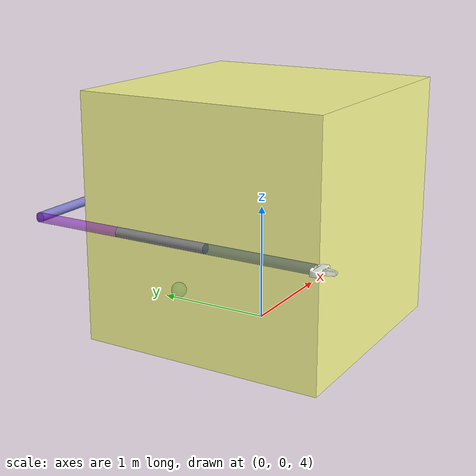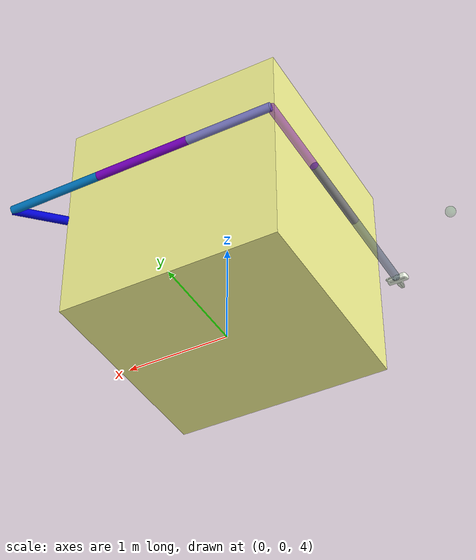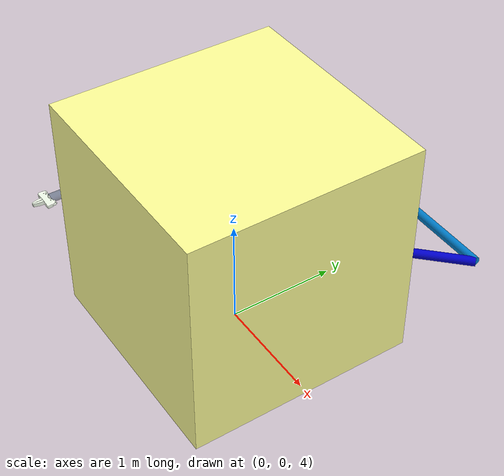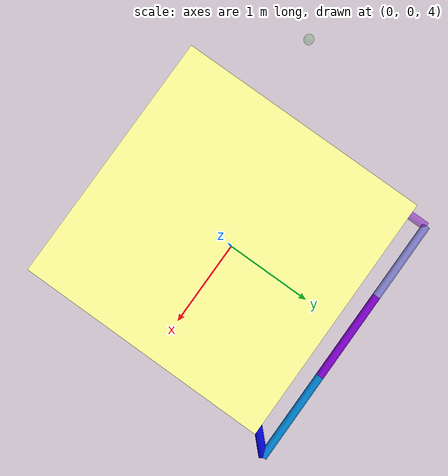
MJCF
<?xml version="1.0" ?>
<mujoco model="free_floating_spacecraft_manipulator">
    <compiler angle="radian" />
    <option timestep="0.2" iterations="30">
        <flag gravity="disable" />
    </option>
    <asset>
		<texture type="skybox" builtin="none" file="space.png" rgb1="1 1 1" rgb2=".6 .8 1" />
        <texture name="texplane" type="2d" builtin="checker" rgb1=".2 .3 .4" rgb2=".1 0.15 0.2" width="512" height="512"/>
        <material name="MatGnd" reflectance="0.5" texture="texplane" texrepeat="1 1" texuniform="true"/>

        <mesh name="hand_col" file="meshes/collision/hand.stl"/>
        <mesh name="finger_col" file="meshes/collision/finger.stl" scale='1.75 1.0 1.75'/>
        <mesh name="hand_viz" file="meshes/visual/hand.stl"/>
        <mesh name="finger_viz" file="meshes/collision/finger.stl" scale='1.75 1.0 1.75'/>
    </asset>
    <size njmax="1000" nconmax="100" />

    <default>
        <default class="panda">
            <joint pos="0 0 0" axis="0 0 1" limited="true"/>
            <position forcelimited="true" ctrllimited="true" user="1002 40 2001 -0.005 0.005"/>
            <default class="spaceRobot_viz">
                <geom contype="0" conaffinity="0" group="0" type="mesh" rgba=".95 .99 .92 1" mass="0"/>
            </default>

            <default class="spaceRobot_col">
                <geom contype="1" conaffinity="1" group="3" type="mesh" rgba=".5 .6 .7 1"/>
            </default>

             <default class="spaceRobot_finger">
                <joint damping="100" armature='5'/>
                <geom friction="1 0.5 0.0001" solref="0.01 1" solimp="0.8 0.9 0.001" margin="0.001" user="0" rgba="0.5 0.6 0.7 .4" contype="1" conaffinity="0" condim="6" group="3" />
                <position user="1002 40 2001 -0.0001 0.0001"/>
            </default>
        </default>

    </default>

    <worldbody>
        <light directional="false" diffuse=".8 .8 .8" specular="0.3 0.3 0.3" pos="1  1 3" dir="-1 -1 -3"/>
        <light directional="false" diffuse=".8 .8 .8" specular="0.3 0.3 0.3" pos="1 -1 3" dir="-1 1 -3"/>
        <light directional="false" diffuse=".8 .8 .8" specular="0.3 0.3 0.3" pos="-1 0 3" dir="1 0 -3" />
        <site name="debrisSite" pos="-2. -0.5 5." rgba="0.2 0.6 0.2 0.25" size=".05" type="sphere" />  <!-- solved -->

        <body name="spacecraft_base" pos="0 0 5" >
            <site name="baseSite" pos="0 0 0" type="sphere" size="0.01" rgba="0.1 0.2 0.3 1" />
            <inertial mass="500" pos="0 0 0" diaginertia="1400 1400 1040"/>
            <joint name="BasefloatingJoint" type="free" damping="0"/>
            <geom size="1.05 1.05 1.05" type="box" rgba="1 1 0.6 1" />
            <body name="spacecraft_link1" pos="1.2268 1.2268 0" quat="0.653281 -0.653281 0.270598 -0.270598">
                <inertial pos="0 0 0" mass="20" diaginertia="0.1 0.1 0.1" />
                <joint damping="200" name="sjoint1" pos="0 0 0" axis="0 0 1" limited="true" range="-3.14159 3.14159" />
                <geom size="0.04 0.25" type="cylinder" rgba="0 0 0.8 1" />
                <body name="spacecraft_link2" pos="-0.3182 0 -0.0682" euler="0 -2.355 0">
                    <inertial pos="0 0 0" quat="0.5 0.5 0.5 0.5" mass="30" diaginertia="25 25 0.25" />
                    <joint damping="200" name="sjoint2" pos="0 0 -0.45" axis="0 1 0" limited="true" range="-3.14159 3.14159" />
                    <geom size="0.04 0.45" type="cylinder" rgba="0 0.5 0.8 1" />
                    <body name="spacecraft_link3" pos="0 0 0.90" euler="0 0 0">
                        <inertial pos="0 0 0" quat="0.5 0.5 0.5 0.5" mass="30" diaginertia="25 25 0.25" />
                        <joint damping="200" name="sjoint3" pos="0 0 -0.45" axis="1 0 0" limited="true" range="-3.14159 3.14159" />
                        <geom size="0.04 0.45" type="cylinder" rgba="0.5 0 0.8 1" />
                        <body name="spacecraft_link4" pos="0 0 0.85" euler="0 0 0">
                            <inertial pos="0 0 0" quat="0.5 0.5 0.5 0.5" mass="20" diaginertia="25 25 0.25" />
                            <joint damping="200" name="sjoint4" pos="0 0 -0.4" axis="0 1 0" limited="true" range="-3.14159 3.14159" />
                            <geom size="0.04 0.4" type="cylinder" rgba="0.5 0.5 0.8 1" />
                            <body name="spacecraft_link5" pos="-0.4 0 0.4" euler="0 -1.57 0">
                                <inertial pos="0 0 0" quat="0.5 0.5 0.5 0.5" mass="20" diaginertia="25 25 0.25" />
                                <joint damping="200" name="sjoint5" pos="0 0 -0.4" axis="1 0 0" limited="true" range="-3.14159 3.14159"/>
                                <geom size="0.04 0.4" type="cylinder" rgba="0.5 0 0.8 0.5" />
                                <body name="spacecraft_link6" pos="0 0 0.8" euler="0 0 0">
                                    <inertial pos="0 0 0" quat="0.5 0.5 0.5 0.5" mass="20" diaginertia="25 25 0.25" />
                                    <joint damping="200" name="sjoint6" pos="0 0 -0.4" axis="0 1 0" limited="true" range="-3.14159 3.14159" />
                                    <geom size="0.04 0.4" type="cylinder" rgba="0.5 0.5 0.5 1" />
                                    <body name="spacecraft_link7" pos="0 0 0.85" euler="0 0 0">
                                        <inertial pos="0 0 0" quat="0.5 0.5 0.5 0.5" mass="20" diaginertia="25 25re 0.25" />
                                        <joint damping="200" name="sjoint7" pos="0 0 0" axis="0 0 1" limited="true" range="-3.14159 3.14159" />
                                        <geom size="0.04 0.45" type="cylinder" rgba="0.2 0.3 0.4 0.5" />
                                        <geom pos="0 0 0.45" euler='0 0 -1.57' class="spaceRobot_viz" mesh="hand_viz"/>
                                        <geom pos="0 0 0.45" euler='0 0 -1.57' class="spaceRobot_col" mesh="hand_col" mass="0.81909"/>
                                        <site name='end_effector' pos='0 0 0.56' size='0.01' euler='0 0 -0.785398'/>

                                        <body name="leftfinger" pos="0 0 0.5154" euler='0 0 -1.57' childclass='spaceRobot_finger'>
                                            <inertial pos="-1.57863e-05 0.0118731 0.0434103" quat="0.705868 0.0310348 -0.0314925 0.706962" mass="0.0927059" diaginertia="6.57134e-05 6.09611e-05 1.09932e-05" />

                                            <geom class="spaceRobot_viz" mesh="finger_viz"/>
                                            <geom size="0.0070" fromto=".009 .006 .0875   -.009 .009 .0875" type="capsule" />
                                            <geom size="0.0070" fromto=".009 .009 .0875   -.009 .006 .0875" type="capsule" />

                                            <geom size="0.0075" fromto=".009 .007 .0775   -.009 .010 .0775" type="capsule" />
                                            <geom size="0.0075" fromto=".009 .010 .0775   -.009 .007 .0775" type="capsule" />

                                            <geom size="0.0082" fromto=".009 .008 .0675   -.009 .011 .0675" type="capsule" />
                                            <geom size="0.0082" fromto=".009 .011 .0675   -.009 .008 .0675" type="capsule" />

                                            <geom size="0.0090" fromto=".009 .009 .0575   -.009 .012 .0575" type="capsule" />
                                            <geom size="0.0090" fromto=".009 .012 .0575   -.009 .009 .0575" type="capsule" />

                                            <geom size="0.0100" fromto=".009 .0105 .0475   -.009 .0135 .0475" type="capsule" />
                                            <geom size="0.0100" fromto=".009 .0135 .0475   -.009 .0105 .0475" type="capsule" />

                                            <geom size="0.0110" fromto=".009 .012 .035   -.009 .015 .035" type="capsule" />
                                            <geom size="0.0110" fromto=".009 .015 .035   -.009 .012 .035" type="capsule" />

                                            <geom size="0.0185 0.0120 0.0175" pos="0 0.014 0.015" type="box" euler='.03 0 0' />
                                        </body>

                                        <body name="rightfinger" pos="0 0 0.5154" euler='0 0 -1.57'  childclass='spaceRobot_finger'>
                                            <inertial pos="1.57863e-05 -0.0118731 0.0434103" quat="0.705868 -0.0310348 0.0314925 0.706962" mass="0.0927059" diaginertia="6.57134e-05 6.09611e-05 1.09932e-05" />
                                            <geom quat="0 0 0 1" class="spaceRobot_viz" mesh="finger_viz"/>
                                            <geom size="0.0070" fromto=".009 -.006 .0875   -.009 -.009 .0875" type="capsule" />
                                            <geom size="0.0070" fromto=".009 -.009 .0875   -.009 -.006 .0875" type="capsule" />

                                            <geom size="0.0075" fromto=".009 -.007 .0775   -.009 -.010 .0775" type="capsule" />
                                            <geom size="0.0075" fromto=".009 -.010 .0775   -.009 -.007 .0775" type="capsule" />

                                            <geom size="0.0082" fromto=".009 -.008 .0675   -.009 -.011 .0675" type="capsule" />
                                            <geom size="0.0082" fromto=".009 -.011 .0675   -.009 -.008 .0675" type="capsule" />

                                            <geom size="0.0090" fromto=".009 -.009 .0575   -.009 -.012 .0575" type="capsule" />
                                            <geom size="0.0090" fromto=".009 -.012 .0575   -.009 -.009 .0575" type="capsule" />

                                            <geom size="0.0100" fromto=".009 -.0105 .0475   -.009 -.0135 .0475" type="capsule" />
                                            <geom size="0.0100" fromto=".009 -.0135 .0475   -.009 -.0105 .0475" type="capsule" />

                                            <geom size="0.0110" fromto=".009 -.012 .035   -.009 -.015 .035" type="capsule" />
                                            <geom size="0.0110" fromto=".009 -.015 .035   -.009 -.012 .035" type="capsule" />

                                            <geom size="0.0185 0.0120 0.0175" pos="0 -.014 0.015" type="box" euler='-.03 0 0' />
                                        </body>
                                    </body>
                                </body>
                            </body>
                        </body>
                    </body>
                </body>
            </body>
        </body>
    </worldbody>

    <actuator>
        <motor name="motor1" joint="sjoint1" ctrlrange="-3 3" ctrllimited="true" />  <!-- gear='32' -->
        <motor name="motor2" joint="sjoint2" ctrlrange="-3 3" ctrllimited="true" />  <!-- gear='32' -->
        <motor name="motor3" joint="sjoint3" ctrlrange="-3 3" ctrllimited="true" />  <!-- gear='32' -->
        <motor name="motor4" joint="sjoint4" ctrlrange="-3 3" ctrllimited="true" />  <!-- gear='32' -->
        <motor name="motor5" joint="sjoint5" ctrlrange="-3 3" ctrllimited="true" />  <!-- gear='32' -->
        <motor name="motor6" joint="sjoint6" ctrlrange="-3 3" ctrllimited="true" />  <!-- gear='32' -->
        <motor name="motor7" joint="sjoint7" ctrlrange="-3 3" ctrllimited="true" />  <!-- gear='32' -->
    </actuator>

    <sensor>
        <gyro name="baseGyro" site="baseSite" noise="0.001" />
        <accelerometer name="baseAccel" site="baseSite" noise="0.001" />
        <jointpos name="encoderPos1" joint="sjoint1" noise="0.001" />
        <jointpos name="encoderPos2" joint="sjoint2" noise="0.001" />
        <jointpos name="encoderPos3" joint="sjoint3" noise="0.001" />
        <jointpos name="encoderPos4" joint="sjoint4" noise="0.001" />
        <jointpos name="encoderPos5" joint="sjoint5" noise="0.001" />
        <jointpos name="encoderPos6" joint="sjoint6" noise="0.001" />
        <jointpos name="encoderPos7" joint="sjoint7" noise="0.001" />

        <jointvel name="encoderVel1" joint="sjoint1" noise="0.001" />
        <jointvel name="encoderVel2" joint="sjoint2" noise="0.001" />
        <jointvel name="encoderVel3" joint="sjoint3" noise="0.001" />
        <jointvel name="encoderVel4" joint="sjoint4" noise="0.001" />
        <jointvel name="encoderVel5" joint="sjoint5" noise="0.001" />
        <jointvel name="encoderVel6" joint="sjoint6" noise="0.001" />
        <jointvel name="encoderVel7" joint="sjoint7" noise="0.001" />
    </sensor>

</mujoco>
